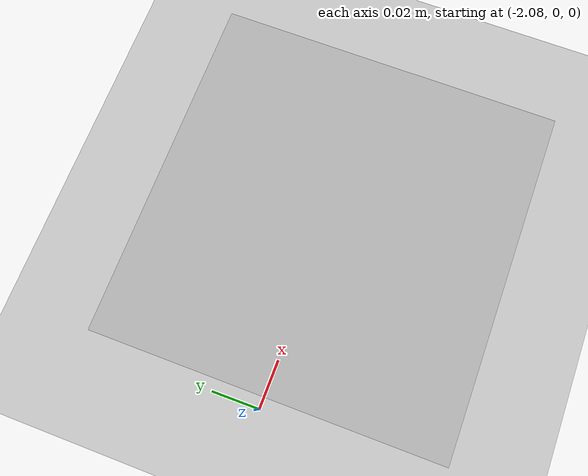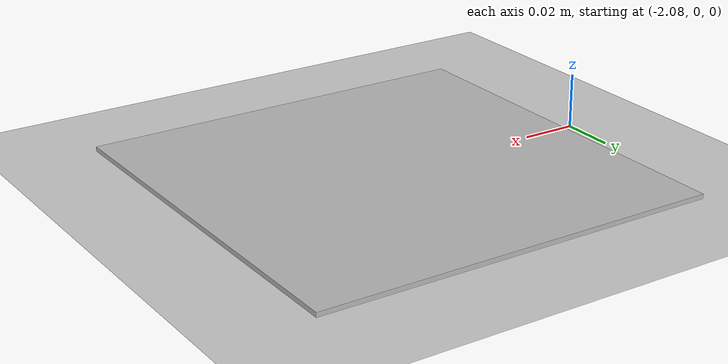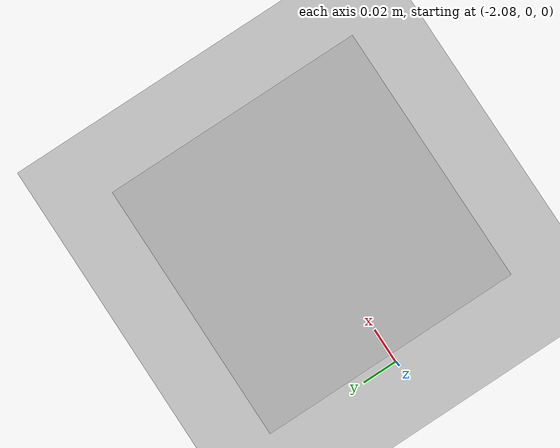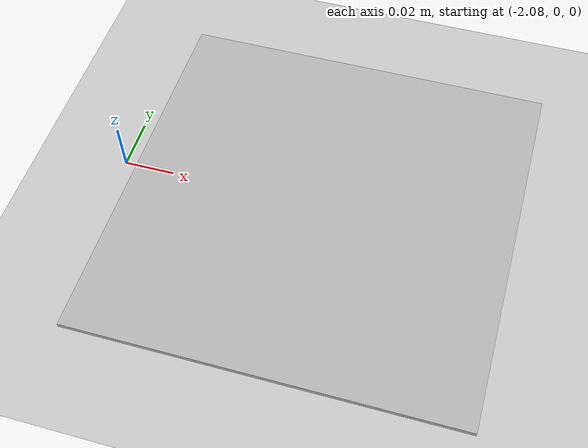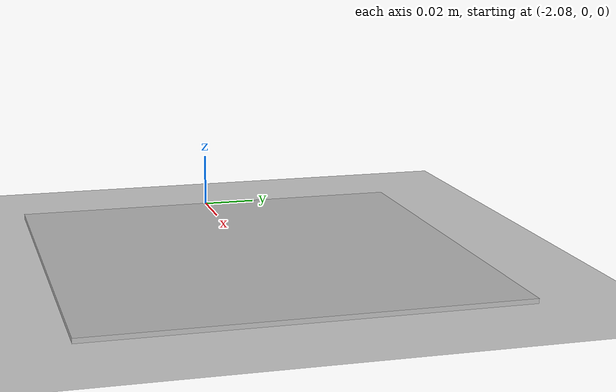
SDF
<sdf version="1.6">
 <world name="default">
  <light name="sun" type="directional">
   <pose>0 0 10 0 -0 0</pose>
   <diffuse>0.8 0.8 0.8 1</diffuse>
   <specular>0.2 0.2 0.2 1</specular>
   <attenuation>
    <range>1000</range>
    <constant>0.9</constant>
    <linear>0.01</linear>
    <quadratic>0.001</quadratic>
   </attenuation>
   <direction>-0.5 0.1 -0.9</direction>
  </light>
  <gravity>0 0 -9.8</gravity>
  <magnetic_field>6e-06 2.3e-05 -4.2e-05</magnetic_field>
  <atmosphere type="adiabatic"/>
  <physics name="default_physics" default="0" type="ode">
   <max_step_size>0.001</max_step_size>
   <real_time_factor>1</real_time_factor>
   <real_time_update_rate>1000</real_time_update_rate>
  </physics>
  <scene><ambient>0.4 0.4 0.4 1</ambient><background>0.7 0.7 0.7 1</background><shadows>1</shadows></scene>
  <audio><device>default</device></audio>
  <spherical_coordinates>
   <surface_model>EARTH_WGS84</surface_model>
   <latitude_deg>0</latitude_deg>
   <longitude_deg>0</longitude_deg>
   <elevation>0</elevation>
   <heading_deg>0</heading_deg>
  </spherical_coordinates>
  <model name="ground_plane">
   <static>1</static>
   <link name="link">
    <collision name="collision">
     <geometry><plane><normal>0 0 1</normal><size>100 100</size></plane></geometry>
     <surface>
      <contact><collide_bitmask>65535</collide_bitmask></contact>
      <friction><ode><mu>100</mu><mu2>50</mu2></ode></friction>
     </surface>
    </collision>
    <visual name="visual">
     <cast_shadows>0</cast_shadows>
     <geometry><plane><normal>0 0 1</normal><size>100 100</size></plane></geometry>
     <material>
      <script><uri>file://media/materials/scripts/gazebo.material</uri><name>Gazebo/Grey</name></script>
     </material>
    </visual>
   </link>
   <pose>-0.830666 3.451 0 0 -0 0</pose>
  </model>
  <include>
   <uri>model://$HOME/SLAM_research/src/models/Mine</uri>
   <name>Mine</name>
   <pose>-2.0 0 0 0 0 0</pose>
  </include>
 </world>
</sdf>

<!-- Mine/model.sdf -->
<sdf version='1.6'>
  <model name='Mine'>
    <link name='link'>
      <inertial>
        <mass>5</mass>
        <inertia>
          <ixx>1</ixx>
          <ixy>0</ixy>
          <ixz>0</ixz>
          <iyy>1</iyy>
          <iyz>0</iyz>
          <izz>1</izz>
        </inertia>
        <pose frame=''>0 0 0 0 -0 0</pose>
      </inertial>
      <self_collide>0</self_collide>
      <enable_wind>0</enable_wind>
      <kinematic>0</kinematic>
      <pose frame=''>-0 -0 -0 0 -0 0</pose>
      <visual name='visual'>
        <geometry>
          <box>
            <size>0.15 0.15 0.003</size>
          </box>
        </geometry>
        <material>
          <script>
            <name>Mine/X_mark</name>
            <uri>model://Mine/materials/scripts/x_mark.material</uri>
          </script>
        </material>
        <pose frame=''>0 0 0 0 -0 0</pose>
        <transparency>0</transparency>
        <cast_shadows>1</cast_shadows>
      </visual>
      <collision name='collision'>
        <laser_retro>0</laser_retro>
        <max_contacts>10</max_contacts>
        <pose frame=''>0 0 0 0 -0 0</pose>
        <geometry>
          <box>
            <size>0.15 0.15 0.002</size>
          </box>
        </geometry>
        <surface>
          <friction>
            <ode>
              <mu>1</mu>
              <mu2>1</mu2>
              <fdir1>0 0 0</fdir1>
              <slip1>0</slip1>
              <slip2>0</slip2>
            </ode>
            <torsional>
              <coefficient>1</coefficient>
              <patch_radius>0</patch_radius>
              <surface_radius>0</surface_radius>
              <use_patch_radius>1</use_patch_radius>
              <ode>
                <slip>0</slip>
              </ode>
            </torsional>
          </friction>
          <bounce>
            <restitution_coefficient>0</restitution_coefficient>
            <threshold>1e+06</threshold>
          </bounce>
          <contact>
            <collide_without_contact>0</collide_without_contact>
            <collide_without_contact_bitmask>1</collide_without_contact_bitmask>
            <collide_bitmask>1</collide_bitmask>
            <ode>
              <soft_cfm>0</soft_cfm>
              <soft_erp>0.2</soft_erp>
              <kp>1e+13</kp>
              <kd>1</kd>
              <max_vel>0.01</max_vel>
              <min_depth>0</min_depth>
            </ode>
            <bullet>
              <split_impulse>1</split_impulse>
              <split_impulse_penetration_threshold>-0.01</split_impulse_penetration_threshold>
              <soft_cfm>0</soft_cfm>
              <soft_erp>0.2</soft_erp>
              <kp>1e+13</kp>
              <kd>1</kd>
            </bullet>
          </contact>
        </surface>
      </collision>
    </link>
    <static>0</static>
    <allow_auto_disable>1</allow_auto_disable>
  </model>
</sdf>
